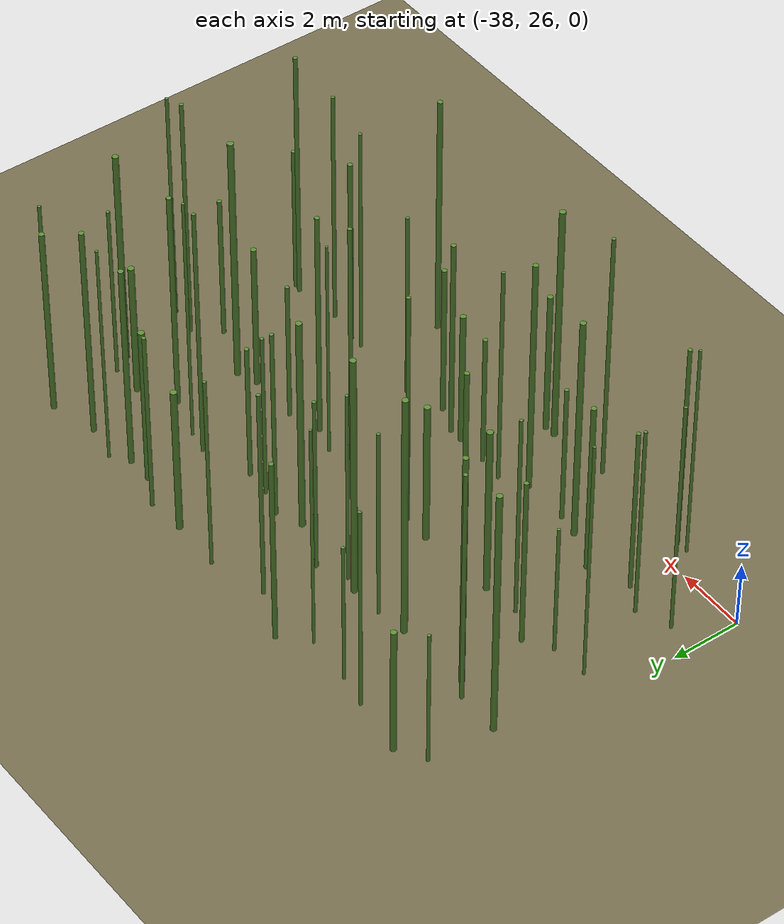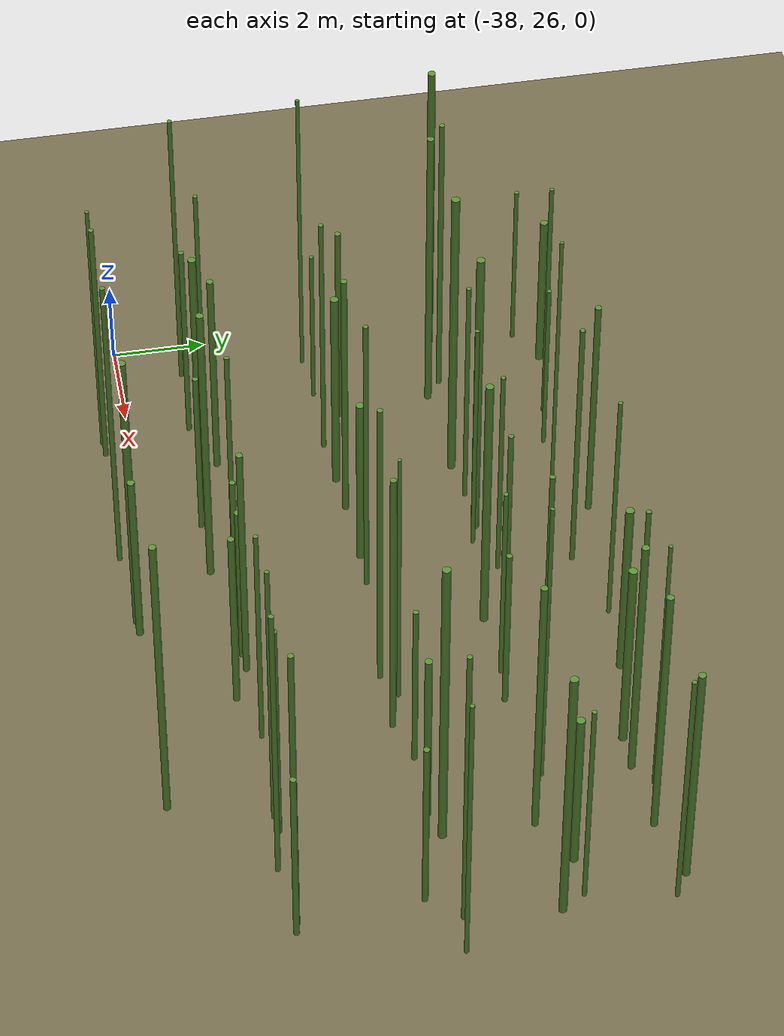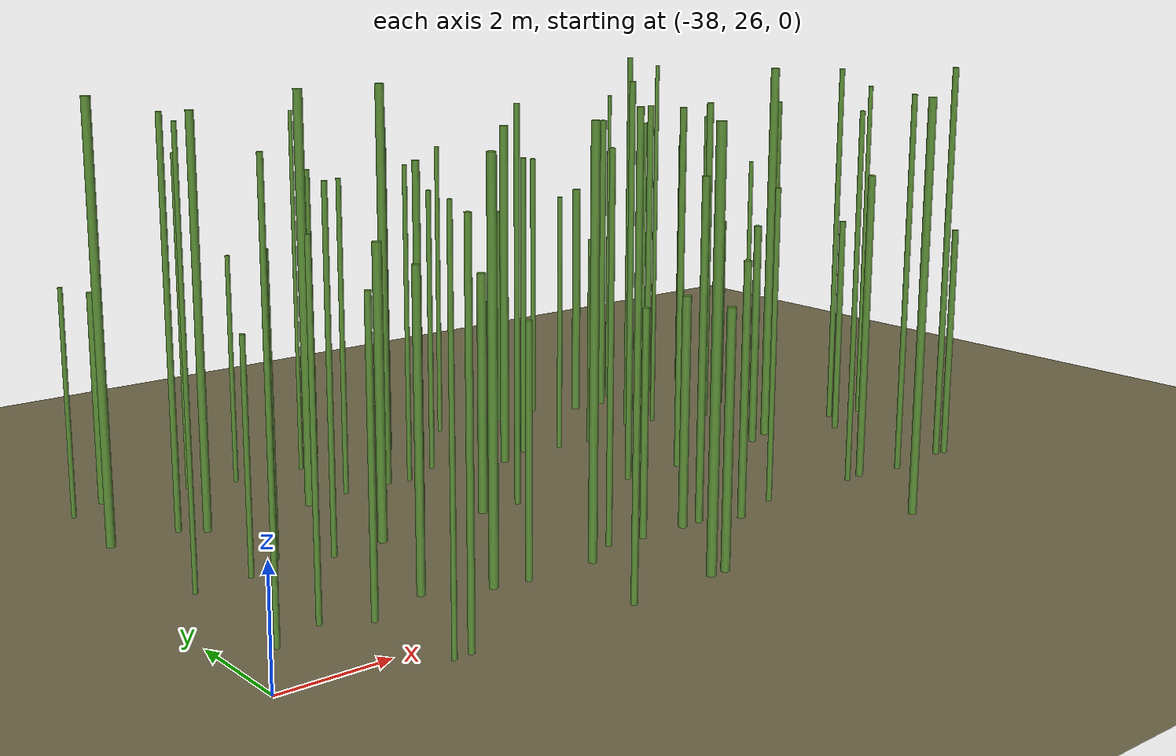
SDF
<sdf version="1.9">
 <world name="bamboo_field">
  <model name="ground_plane">
   <static>true</static>
   <link name="link">
    <collision name="collision">
     <geometry><plane><normal>0 0 1</normal><size>80.0 80.0</size></plane></geometry>
    </collision>
    <visual name="visual">
     <geometry><plane><normal>0 0 1</normal><size>80.0 80.0</size></plane></geometry>
     <material><diffuse>0.45 0.42 0.30 1</diffuse></material>
    </visual>
   </link>
  </model>
  <model name="bamboo_1682">
   <static>true</static>
   <pose>-35.31208620726054 25.401371986470004 3.402576567301347 0 0 0</pose>
   <link name="link">
    <collision name="collision">
     <geometry>
      <cylinder><radius>0.04169248928218038</radius><length>6.805153134602694</length></cylinder>
     </geometry>
    </collision>
    <visual name="visual">
     <geometry>
      <cylinder><radius>0.04169248928218038</radius><length>6.805153134602694</length></cylinder>
     </geometry>
     <material><diffuse>0.35 0.55 0.20 1</diffuse><specular>0.1 0.1 0.1 1</specular></material>
    </visual>
   </link>
  </model>
  <model name="bamboo_1683">
   <static>true</static>
   <pose>-34.979411960656854 25.432045791497355 3.2957626268711664 0 0 0</pose>
   <link name="link">
    <collision name="collision">
     <geometry>
      <cylinder><radius>0.05673562390233272</radius><length>6.591525253742333</length></cylinder>
     </geometry>
    </collision>
    <visual name="visual">
     <geometry>
      <cylinder><radius>0.05673562390233272</radius><length>6.591525253742333</length></cylinder>
     </geometry>
     <material><diffuse>0.35 0.55 0.20 1</diffuse><specular>0.1 0.1 0.1 1</specular></material>
    </visual>
   </link>
  </model>
  <model name="bamboo_1686">
   <static>true</static>
   <pose>-31.84730680634404 25.327062709111434 3.941531344190084 0 0 0</pose>
   <link name="link">
    <collision name="collision">
     <geometry>
      <cylinder><radius>0.055008664891171816</radius><length>7.883062688380168</length></cylinder>
     </geometry>
    </collision>
    <visual name="visual">
     <geometry>
      <cylinder><radius>0.055008664891171816</radius><length>7.883062688380168</length></cylinder>
     </geometry>
     <material><diffuse>0.35 0.55 0.20 1</diffuse><specular>0.1 0.1 0.1 1</specular></material>
    </visual>
   </link>
  </model>
  <model name="bamboo_1688">
   <static>true</static>
   <pose>-30.014076499683696 25.452834047697436 3.7731904923446646 0 0 0</pose>
   <link name="link">
    <collision name="collision">
     <geometry>
      <cylinder><radius>0.08611767988673699</radius><length>7.546380984689329</length></cylinder>
     </geometry>
    </collision>
    <visual name="visual">
     <geometry>
      <cylinder><radius>0.08611767988673699</radius><length>7.546380984689329</length></cylinder>
     </geometry>
     <material><diffuse>0.35 0.55 0.20 1</diffuse><specular>0.1 0.1 0.1 1</specular></material>
    </visual>
   </link>
  </model>
  <model name="bamboo_1689">
   <static>true</static>
   <pose>-29.677153590034575 25.464780924572004 2.2597816536338096 0 0 0</pose>
   <link name="link">
    <collision name="collision">
     <geometry>
      <cylinder><radius>0.07759250459803238</radius><length>4.519563307267619</length></cylinder>
     </geometry>
    </collision>
    <visual name="visual">
     <geometry>
      <cylinder><radius>0.07759250459803238</radius><length>4.519563307267619</length></cylinder>
     </geometry>
     <material><diffuse>0.35 0.55 0.20 1</diffuse><specular>0.1 0.1 0.1 1</specular></material>
    </visual>
   </link>
  </model>
  <model name="bamboo_1693">
   <static>true</static>
   <pose>-24.914588256925803 25.37478450984189 3.8256660919235044 0 0 0</pose>
   <link name="link">
    <collision name="collision">
     <geometry>
      <cylinder><radius>0.07493898742366278</radius><length>7.651332183847009</length></cylinder>
     </geometry>
    </collision>
    <visual name="visual">
     <geometry>
      <cylinder><radius>0.07493898742366278</radius><length>7.651332183847009</length></cylinder>
     </geometry>
     <material><diffuse>0.35 0.55 0.20 1</diffuse><specular>0.1 0.1 0.1 1</specular></material>
    </visual>
   </link>
  </model>
  <model name="bamboo_1752">
   <static>true</static>
   <pose>-37.12999263579893 27.388148961588495 3.7052209451957836 0 0 0</pose>
   <link name="link">
    <collision name="collision">
     <geometry>
      <cylinder><radius>0.0477938428473232</radius><length>7.410441890391567</length></cylinder>
     </geometry>
    </collision>
    <visual name="visual">
     <geometry>
      <cylinder><radius>0.0477938428473232</radius><length>7.410441890391567</length></cylinder>
     </geometry>
     <material><diffuse>0.35 0.55 0.20 1</diffuse><specular>0.1 0.1 0.1 1</specular></material>
    </visual>
   </link>
  </model>
  <model name="bamboo_1753">
   <static>true</static>
   <pose>-36.18106537528909 27.754088677848074 3.050473741919584 0 0 0</pose>
   <link name="link">
    <collision name="collision">
     <geometry>
      <cylinder><radius>0.048456043850921934</radius><length>6.100947483839168</length></cylinder>
     </geometry>
    </collision>
    <visual name="visual">
     <geometry>
      <cylinder><radius>0.048456043850921934</radius><length>6.100947483839168</length></cylinder>
     </geometry>
     <material><diffuse>0.35 0.55 0.20 1</diffuse><specular>0.1 0.1 0.1 1</specular></material>
    </visual>
   </link>
  </model>
  <model name="bamboo_1754">
   <static>true</static>
   <pose>-35.44112649378931 27.320916037346652 2.618616569138009 0 0 0</pose>
   <link name="link">
    <collision name="collision">
     <geometry>
      <cylinder><radius>0.05711834975511773</radius><length>5.237233138276018</length></cylinder>
     </geometry>
    </collision>
    <visual name="visual">
     <geometry>
      <cylinder><radius>0.05711834975511773</radius><length>5.237233138276018</length></cylinder>
     </geometry>
     <material><diffuse>0.35 0.55 0.20 1</diffuse><specular>0.1 0.1 0.1 1</specular></material>
    </visual>
   </link>
  </model>
  <model name="bamboo_1755">
   <static>true</static>
   <pose>-34.26541254425033 27.764986907187307 2.7130029275833105 0 0 0</pose>
   <link name="link">
    <collision name="collision">
     <geometry>
      <cylinder><radius>0.0724998331058555</radius><length>5.426005855166621</length></cylinder>
     </geometry>
    </collision>
    <visual name="visual">
     <geometry>
      <cylinder><radius>0.0724998331058555</radius><length>5.426005855166621</length></cylinder>
     </geometry>
     <material><diffuse>0.35 0.55 0.20 1</diffuse><specular>0.1 0.1 0.1 1</specular></material>
    </visual>
   </link>
  </model>
  <model name="bamboo_1756">
   <static>true</static>
   <pose>-33.15753409815572 27.285955077442125 3.566174876506409 0 0 0</pose>
   <link name="link">
    <collision name="collision">
     <geometry>
      <cylinder><radius>0.08228729673433917</radius><length>7.132349753012818</length></cylinder>
     </geometry>
    </collision>
    <visual name="visual">
     <geometry>
      <cylinder><radius>0.08228729673433917</radius><length>7.132349753012818</length></cylinder>
     </geometry>
     <material><diffuse>0.35 0.55 0.20 1</diffuse><specular>0.1 0.1 0.1 1</specular></material>
    </visual>
   </link>
  </model>
  <model name="bamboo_1757">
   <static>true</static>
   <pose>-32.51274438101849 27.17313356232206 2.1976800404791277 0 0 0</pose>
   <link name="link">
    <collision name="collision">
     <geometry>
      <cylinder><radius>0.059924561167658125</radius><length>4.395360080958255</length></cylinder>
     </geometry>
    </collision>
    <visual name="visual">
     <geometry>
      <cylinder><radius>0.059924561167658125</radius><length>4.395360080958255</length></cylinder>
     </geometry>
     <material><diffuse>0.35 0.55 0.20 1</diffuse><specular>0.1 0.1 0.1 1</specular></material>
    </visual>
   </link>
  </model>
  <model name="bamboo_1758">
   <static>true</static>
   <pose>-31.14278509152722 27.16527751310188 3.745231227270473 0 0 0</pose>
   <link name="link">
    <collision name="collision">
     <geometry>
      <cylinder><radius>0.07706289438073675</radius><length>7.490462454540946</length></cylinder>
     </geometry>
    </collision>
    <visual name="visual">
     <geometry>
      <cylinder><radius>0.07706289438073675</radius><length>7.490462454540946</length></cylinder>
     </geometry>
     <material><diffuse>0.35 0.55 0.20 1</diffuse><specular>0.1 0.1 0.1 1</specular></material>
    </visual>
   </link>
  </model>
  <model name="bamboo_1759">
   <static>true</static>
   <pose>-30.412620953999348 27.581660204273817 3.47887155685849 0 0 0</pose>
   <link name="link">
    <collision name="collision">
     <geometry>
      <cylinder><radius>0.05280360363322118</radius><length>6.95774311371698</length></cylinder>
     </geometry>
    </collision>
    <visual name="visual">
     <geometry>
      <cylinder><radius>0.05280360363322118</radius><length>6.95774311371698</length></cylinder>
     </geometry>
     <material><diffuse>0.35 0.55 0.20 1</diffuse><specular>0.1 0.1 0.1 1</specular></material>
    </visual>
   </link>
  </model>
  <model name="bamboo_1760">
   <static>true</static>
   <pose>-29.67097906432337 27.512478111532445 2.080465584686063 0 0 0</pose>
   <link name="link">
    <collision name="collision">
     <geometry>
      <cylinder><radius>0.06280330254786859</radius><length>4.160931169372126</length></cylinder>
     </geometry>
    </collision>
    <visual name="visual">
     <geometry>
      <cylinder><radius>0.06280330254786859</radius><length>4.160931169372126</length></cylinder>
     </geometry>
     <material><diffuse>0.35 0.55 0.20 1</diffuse><specular>0.1 0.1 0.1 1</specular></material>
    </visual>
   </link>
  </model>
  <model name="bamboo_1761">
   <static>true</static>
   <pose>-28.728638270833002 27.491885543594616 2.1273378715834164 0 0 0</pose>
   <link name="link">
    <collision name="collision">
     <geometry>
      <cylinder><radius>0.08153461900259064</radius><length>4.254675743166833</length></cylinder>
     </geometry>
    </collision>
    <visual name="visual">
     <geometry>
      <cylinder><radius>0.08153461900259064</radius><length>4.254675743166833</length></cylinder>
     </geometry>
     <material><diffuse>0.35 0.55 0.20 1</diffuse><specular>0.1 0.1 0.1 1</specular></material>
    </visual>
   </link>
  </model>
  <model name="bamboo_1762">
   <static>true</static>
   <pose>-28.31149583150414 27.501948704589385 3.1625408750367505 0 0 0</pose>
   <link name="link">
    <collision name="collision">
     <geometry>
      <cylinder><radius>0.0692838695502581</radius><length>6.325081750073501</length></cylinder>
     </geometry>
    </collision>
    <visual name="visual">
     <geometry>
      <cylinder><radius>0.0692838695502581</radius><length>6.325081750073501</length></cylinder>
     </geometry>
     <material><diffuse>0.35 0.55 0.20 1</diffuse><specular>0.1 0.1 0.1 1</specular></material>
    </visual>
   </link>
  </model>
  <model name="bamboo_1763">
   <static>true</static>
   <pose>-27.54243622738856 27.18446549936091 2.392851657842085 0 0 0</pose>
   <link name="link">
    <collision name="collision">
     <geometry>
      <cylinder><radius>0.07169528509417718</radius><length>4.78570331568417</length></cylinder>
     </geometry>
    </collision>
    <visual name="visual">
     <geometry>
      <cylinder><radius>0.07169528509417718</radius><length>4.78570331568417</length></cylinder>
     </geometry>
     <material><diffuse>0.35 0.55 0.20 1</diffuse><specular>0.1 0.1 0.1 1</specular></material>
    </visual>
   </link>
  </model>
  <model name="bamboo_1764">
   <static>true</static>
   <pose>-26.44643171643943 27.533294635163326 2.974461336433306 0 0 0</pose>
   <link name="link">
    <collision name="collision">
     <geometry>
      <cylinder><radius>0.05074969716306543</radius><length>5.948922672866612</length></cylinder>
     </geometry>
    </collision>
    <visual name="visual">
     <geometry>
      <cylinder><radius>0.05074969716306543</radius><length>5.948922672866612</length></cylinder>
     </geometry>
     <material><diffuse>0.35 0.55 0.20 1</diffuse><specular>0.1 0.1 0.1 1</specular></material>
    </visual>
   </link>
  </model>
  <model name="bamboo_1765">
   <static>true</static>
   <pose>-24.315810273039563 27.445473259538026 3.611531729026624 0 0 0</pose>
   <link name="link">
    <collision name="collision">
     <geometry>
      <cylinder><radius>0.04973993822520134</radius><length>7.223063458053248</length></cylinder>
     </geometry>
    </collision>
    <visual name="visual">
     <geometry>
      <cylinder><radius>0.04973993822520134</radius><length>7.223063458053248</length></cylinder>
     </geometry>
     <material><diffuse>0.35 0.55 0.20 1</diffuse><specular>0.1 0.1 0.1 1</specular></material>
    </visual>
   </link>
  </model>
  <model name="bamboo_1766">
   <static>true</static>
   <pose>-23.922129208032512 27.481200240728835 2.985210279094103 0 0 0</pose>
   <link name="link">
    <collision name="collision">
     <geometry>
      <cylinder><radius>0.07006770732654005</radius><length>5.970420558188206</length></cylinder>
     </geometry>
    </collision>
    <visual name="visual">
     <geometry>
      <cylinder><radius>0.07006770732654005</radius><length>5.970420558188206</length></cylinder>
     </geometry>
     <material><diffuse>0.35 0.55 0.20 1</diffuse><specular>0.1 0.1 0.1 1</specular></material>
    </visual>
   </link>
  </model>
  <model name="bamboo_1767">
   <static>true</static>
   <pose>-22.965706025826254 27.318796997218367 3.7345219333796207 0 0 0</pose>
   <link name="link">
    <collision name="collision">
     <geometry>
      <cylinder><radius>0.054981863373592454</radius><length>7.469043866759241</length></cylinder>
     </geometry>
    </collision>
    <visual name="visual">
     <geometry>
      <cylinder><radius>0.054981863373592454</radius><length>7.469043866759241</length></cylinder>
     </geometry>
     <material><diffuse>0.35 0.55 0.20 1</diffuse><specular>0.1 0.1 0.1 1</specular></material>
    </visual>
   </link>
  </model>
  <model name="bamboo_1768">
   <static>true</static>
   <pose>-21.55352778741984 27.467401461973367 3.954457994648996 0 0 0</pose>
   <link name="link">
    <collision name="collision">
     <geometry><cylinder><radius>0.062002190020483</radius><length>7.908915989297992</length></cylinder></geometry>
    </collision>
    <visual name="visual">
     <geometry><cylinder><radius>0.062002190020483</radius><length>7.908915989297992</length></cylinder></geometry>
     <material><diffuse>0.35 0.55 0.20 1</diffuse><specular>0.1 0.1 0.1 1</specular></material>
    </visual>
   </link>
  </model>
  <model name="bamboo_1769">
   <static>true</static>
   <pose>-21.341941048579145 27.4285055954491 2.3262617465674156 0 0 0</pose>
   <link name="link">
    <collision name="collision">
     <geometry>
      <cylinder><radius>0.06352531645290103</radius><length>4.652523493134831</length></cylinder>
     </geometry>
    </collision>
    <visual name="visual">
     <geometry>
      <cylinder><radius>0.06352531645290103</radius><length>4.652523493134831</length></cylinder>
     </geometry>
     <material><diffuse>0.35 0.55 0.20 1</diffuse><specular>0.1 0.1 0.1 1</specular></material>
    </visual>
   </link>
  </model>
  <model name="bamboo_1822">
   <static>true</static>
   <pose>-37.08047899050775 30.08359589904291 3.8120290607179905 0 0 0</pose>
   <link name="link">
    <collision name="collision">
     <geometry>
      <cylinder><radius>0.041711265648877595</radius><length>7.624058121435981</length></cylinder>
     </geometry>
    </collision>
    <visual name="visual">
     <geometry>
      <cylinder><radius>0.041711265648877595</radius><length>7.624058121435981</length></cylinder>
     </geometry>
     <material><diffuse>0.35 0.55 0.20 1</diffuse><specular>0.1 0.1 0.1 1</specular></material>
    </visual>
   </link>
  </model>
  <model name="bamboo_1823">
   <static>true</static>
   <pose>-36.01450098709544 30.16330264032971 2.068228078415678 0 0 0</pose>
   <link name="link">
    <collision name="collision">
     <geometry>
      <cylinder><radius>0.0471477233002449</radius><length>4.136456156831356</length></cylinder>
     </geometry>
    </collision>
    <visual name="visual">
     <geometry>
      <cylinder><radius>0.0471477233002449</radius><length>4.136456156831356</length></cylinder>
     </geometry>
     <material><diffuse>0.35 0.55 0.20 1</diffuse><specular>0.1 0.1 0.1 1</specular></material>
    </visual>
   </link>
  </model>
  <model name="bamboo_1824">
   <static>true</static>
   <pose>-35.30172954272356 30.621875638986126 2.6878035394511857 0 0 0</pose>
   <link name="link">
    <collision name="collision">
     <geometry>
      <cylinder><radius>0.06419224301639215</radius><length>5.375607078902371</length></cylinder>
     </geometry>
    </collision>
    <visual name="visual">
     <geometry>
      <cylinder><radius>0.06419224301639215</radius><length>5.375607078902371</length></cylinder>
     </geometry>
     <material><diffuse>0.35 0.55 0.20 1</diffuse><specular>0.1 0.1 0.1 1</specular></material>
    </visual>
   </link>
  </model>
  <model name="bamboo_1825">
   <static>true</static>
   <pose>-34.42883239636821 30.13245638687307 3.242625121218035 0 0 0</pose>
   <link name="link">
    <collision name="collision">
     <geometry>
      <cylinder><radius>0.05074180955186247</radius><length>6.48525024243607</length></cylinder>
     </geometry>
    </collision>
    <visual name="visual">
     <geometry>
      <cylinder><radius>0.05074180955186247</radius><length>6.48525024243607</length></cylinder>
     </geometry>
     <material><diffuse>0.35 0.55 0.20 1</diffuse><specular>0.1 0.1 0.1 1</specular></material>
    </visual>
   </link>
  </model>
  <model name="bamboo_1826">
   <static>true</static>
   <pose>-33.37445712647313 30.228682093489233 2.6745091825229776 0 0 0</pose>
   <link name="link">
    <collision name="collision">
     <geometry>
      <cylinder><radius>0.08619428155472514</radius><length>5.349018365045955</length></cylinder>
     </geometry>
    </collision>
    <visual name="visual">
     <geometry>
      <cylinder><radius>0.08619428155472514</radius><length>5.349018365045955</length></cylinder>
     </geometry>
     <material><diffuse>0.35 0.55 0.20 1</diffuse><specular>0.1 0.1 0.1 1</specular></material>
    </visual>
   </link>
  </model>
  <model name="bamboo_1827">
   <static>true</static>
   <pose>-32.508821638158835 30.28964551328129 3.326496140606752 0 0 0</pose>
   <link name="link">
    <collision name="collision">
     <geometry>
      <cylinder><radius>0.06744503932309001</radius><length>6.652992281213504</length></cylinder>
     </geometry>
    </collision>
    <visual name="visual">
     <geometry>
      <cylinder><radius>0.06744503932309001</radius><length>6.652992281213504</length></cylinder>
     </geometry>
     <material><diffuse>0.35 0.55 0.20 1</diffuse><specular>0.1 0.1 0.1 1</specular></material>
    </visual>
   </link>
  </model>
  <model name="bamboo_1828">
   <static>true</static>
   <pose>-31.06364491188492 30.370186403876357 2.2524563386229204 0 0 0</pose>
   <link name="link">
    <collision name="collision">
     <geometry>
      <cylinder><radius>0.08823767749343767</radius><length>4.504912677245841</length></cylinder>
     </geometry>
    </collision>
    <visual name="visual">
     <geometry>
      <cylinder><radius>0.08823767749343767</radius><length>4.504912677245841</length></cylinder>
     </geometry>
     <material><diffuse>0.35 0.55 0.20 1</diffuse><specular>0.1 0.1 0.1 1</specular></material>
    </visual>
   </link>
  </model>
  <model name="bamboo_1829">
   <static>true</static>
   <pose>-30.26325638062961 30.355297872208276 3.746613477880124 0 0 0</pose>
   <link name="link">
    <collision name="collision">
     <geometry>
      <cylinder><radius>0.054785671653710025</radius><length>7.493226955760248</length></cylinder>
     </geometry>
    </collision>
    <visual name="visual">
     <geometry>
      <cylinder><radius>0.054785671653710025</radius><length>7.493226955760248</length></cylinder>
     </geometry>
     <material><diffuse>0.35 0.55 0.20 1</diffuse><specular>0.1 0.1 0.1 1</specular></material>
    </visual>
   </link>
  </model>
  <model name="bamboo_1830">
   <static>true</static>
   <pose>-27.638684632512035 30.186397585145503 3.882499439800147 0 0 0</pose>
   <link name="link">
    <collision name="collision">
     <geometry>
      <cylinder><radius>0.05987790495903291</radius><length>7.764998879600294</length></cylinder>
     </geometry>
    </collision>
    <visual name="visual">
     <geometry>
      <cylinder><radius>0.05987790495903291</radius><length>7.764998879600294</length></cylinder>
     </geometry>
     <material><diffuse>0.35 0.55 0.20 1</diffuse><specular>0.1 0.1 0.1 1</specular></material>
    </visual>
   </link>
  </model>
  <model name="bamboo_1831">
   <static>true</static>
   <pose>-27.053905313475294 30.470638406497812 3.466824646958646 0 0 0</pose>
   <link name="link">
    <collision name="collision">
     <geometry>
      <cylinder><radius>0.040835961922510385</radius><length>6.933649293917292</length></cylinder>
     </geometry>
    </collision>
    <visual name="visual">
     <geometry>
      <cylinder><radius>0.040835961922510385</radius><length>6.933649293917292</length></cylinder>
     </geometry>
     <material><diffuse>0.35 0.55 0.20 1</diffuse><specular>0.1 0.1 0.1 1</specular></material>
    </visual>
   </link>
  </model>
  <model name="bamboo_1832">
   <static>true</static>
   <pose>-26.28709307958864 30.21127947844048 3.600519978004042 0 0 0</pose>
   <link name="link">
    <collision name="collision">
     <geometry>
      <cylinder><radius>0.06625226119421243</radius><length>7.201039956008084</length></cylinder>
     </geometry>
    </collision>
    <visual name="visual">
     <geometry>
      <cylinder><radius>0.06625226119421243</radius><length>7.201039956008084</length></cylinder>
     </geometry>
     <material><diffuse>0.35 0.55 0.20 1</diffuse><specular>0.1 0.1 0.1 1</specular></material>
    </visual>
   </link>
  </model>
  <model name="bamboo_1833">
   <static>true</static>
   <pose>-25.346142123648715 30.494001831747433 2.2002761465370195 0 0 0</pose>
   <link name="link">
    <collision name="collision">
     <geometry>
      <cylinder><radius>0.058723606004845275</radius><length>4.400552293074039</length></cylinder>
     </geometry>
    </collision>
    <visual name="visual">
     <geometry>
      <cylinder><radius>0.058723606004845275</radius><length>4.400552293074039</length></cylinder>
     </geometry>
     <material><diffuse>0.35 0.55 0.20 1</diffuse><specular>0.1 0.1 0.1 1</specular></material>
    </visual>
   </link>
  </model>
  <model name="bamboo_1834">
   <static>true</static>
   <pose>-23.855278888244676 30.476748884324216 2.3041021606448524 0 0 0</pose>
   <link name="link">
    <collision name="collision">
     <geometry>
      <cylinder><radius>0.07755520906898601</radius><length>4.608204321289705</length></cylinder>
     </geometry>
    </collision>
    <visual name="visual">
     <geometry>
      <cylinder><radius>0.07755520906898601</radius><length>4.608204321289705</length></cylinder>
     </geometry>
     <material><diffuse>0.35 0.55 0.20 1</diffuse><specular>0.1 0.1 0.1 1</specular></material>
    </visual>
   </link>
  </model>
  <model name="bamboo_1835">
   <static>true</static>
   <pose>-23.263947699229707 30.680652630693796 3.897798216355932 0 0 0</pose>
   <link name="link">
    <collision name="collision">
     <geometry>
      <cylinder><radius>0.0879528382305601</radius><length>7.795596432711864</length></cylinder>
     </geometry>
    </collision>
    <visual name="visual">
     <geometry>
      <cylinder><radius>0.0879528382305601</radius><length>7.795596432711864</length></cylinder>
     </geometry>
     <material><diffuse>0.35 0.55 0.20 1</diffuse><specular>0.1 0.1 0.1 1</specular></material>
    </visual>
   </link>
  </model>
  <model name="bamboo_1836">
   <static>true</static>
   <pose>-21.725991324303884 30.050230525703203 2.272239755415136 0 0 0</pose>
   <link name="link">
    <collision name="collision">
     <geometry>
      <cylinder><radius>0.0634002073563342</radius><length>4.544479510830272</length></cylinder>
     </geometry>
    </collision>
    <visual name="visual">
     <geometry>
      <cylinder><radius>0.0634002073563342</radius><length>4.544479510830272</length></cylinder>
     </geometry>
     <material><diffuse>0.35 0.55 0.20 1</diffuse><specular>0.1 0.1 0.1 1</specular></material>
    </visual>
   </link>
  </model>
  <model name="bamboo_1837">
   <static>true</static>
   <pose>-21.15297787194437 30.721476023871382 3.8461043049910737 0 0 0</pose>
   <link name="link">
    <collision name="collision">
     <geometry>
      <cylinder><radius>0.05558026753692135</radius><length>7.692208609982147</length></cylinder>
     </geometry>
    </collision>
    <visual name="visual">
     <geometry>
      <cylinder><radius>0.05558026753692135</radius><length>7.692208609982147</length></cylinder>
     </geometry>
     <material><diffuse>0.35 0.55 0.20 1</diffuse><specular>0.1 0.1 0.1 1</specular></material>
    </visual>
   </link>
  </model>
  <model name="bamboo_1838">
   <static>true</static>
   <pose>-20.323256016819947 30.614874790364794 3.644882502559616 0 0 0</pose>
   <link name="link">
    <collision name="collision">
     <geometry>
      <cylinder><radius>0.04718957836960708</radius><length>7.289765005119232</length></cylinder>
     </geometry>
    </collision>
    <visual name="visual">
     <geometry>
      <cylinder><radius>0.04718957836960708</radius><length>7.289765005119232</length></cylinder>
     </geometry>
     <material><diffuse>0.35 0.55 0.20 1</diffuse><specular>0.1 0.1 0.1 1</specular></material>
    </visual>
   </link>
  </model>
  <model name="bamboo_1889">
   <static>true</static>
   <pose>-37.21806253309893 32.96180699898168 3.9114234026132966 0 0 0</pose>
   <link name="link">
    <collision name="collision">
     <geometry>
      <cylinder><radius>0.08296793120704189</radius><length>7.822846805226593</length></cylinder>
     </geometry>
    </collision>
    <visual name="visual">
     <geometry>
      <cylinder><radius>0.08296793120704189</radius><length>7.822846805226593</length></cylinder>
     </geometry>
     <material><diffuse>0.35 0.55 0.20 1</diffuse><specular>0.1 0.1 0.1 1</specular></material>
    </visual>
   </link>
  </model>
  <model name="bamboo_1890">
   <static>true</static>
   <pose>-35.93845507709417 32.9469991348013 3.744194189953522 0 0 0</pose>
   <link name="link">
    <collision name="collision">
     <geometry>
      <cylinder><radius>0.057262398115160235</radius><length>7.488388379907044</length></cylinder>
     </geometry>
    </collision>
    <visual name="visual">
     <geometry>
      <cylinder><radius>0.057262398115160235</radius><length>7.488388379907044</length></cylinder>
     </geometry>
     <material><diffuse>0.35 0.55 0.20 1</diffuse><specular>0.1 0.1 0.1 1</specular></material>
    </visual>
   </link>
  </model>
  <model name="bamboo_1891">
   <static>true</static>
   <pose>-35.52344690531502 32.63139114900776 3.759343888938183 0 0 0</pose>
   <link name="link">
    <collision name="collision">
     <geometry>
      <cylinder><radius>0.07531837830169985</radius><length>7.518687777876366</length></cylinder>
     </geometry>
    </collision>
    <visual name="visual">
     <geometry>
      <cylinder><radius>0.07531837830169985</radius><length>7.518687777876366</length></cylinder>
     </geometry>
     <material><diffuse>0.35 0.55 0.20 1</diffuse><specular>0.1 0.1 0.1 1</specular></material>
    </visual>
   </link>
  </model>
  <model name="bamboo_1892">
   <static>true</static>
   <pose>-33.33954003683485 32.74536206486524 3.8814080226463537 0 0 0</pose>
   <link name="link">
    <collision name="collision">
     <geometry>
      <cylinder><radius>0.08790156848492006</radius><length>7.762816045292707</length></cylinder>
     </geometry>
    </collision>
    <visual name="visual">
     <geometry>
      <cylinder><radius>0.08790156848492006</radius><length>7.762816045292707</length></cylinder>
     </geometry>
     <material><diffuse>0.35 0.55 0.20 1</diffuse><specular>0.1 0.1 0.1 1</specular></material>
    </visual>
   </link>
  </model>
  <model name="bamboo_1893">
   <static>true</static>
   <pose>-32.45784962214581 32.87555205571868 3.036977695932765 0 0 0</pose>
   <link name="link">
    <collision name="collision">
     <geometry>
      <cylinder><radius>0.04902083798874405</radius><length>6.07395539186553</length></cylinder>
     </geometry>
    </collision>
    <visual name="visual">
     <geometry>
      <cylinder><radius>0.04902083798874405</radius><length>6.07395539186553</length></cylinder>
     </geometry>
     <material><diffuse>0.35 0.55 0.20 1</diffuse><specular>0.1 0.1 0.1 1</specular></material>
    </visual>
   </link>
  </model>
  <model name="bamboo_1894">
   <static>true</static>
   <pose>-31.496585166430705 32.910782624865455 3.875636524776624 0 0 0</pose>
   <link name="link">
    <collision name="collision">
     <geometry>
      <cylinder><radius>0.08599995700172956</radius><length>7.751273049553248</length></cylinder>
     </geometry>
    </collision>
    <visual name="visual">
     <geometry>
      <cylinder><radius>0.08599995700172956</radius><length>7.751273049553248</length></cylinder>
     </geometry>
     <material><diffuse>0.35 0.55 0.20 1</diffuse><specular>0.1 0.1 0.1 1</specular></material>
    </visual>
   </link>
  </model>
  <model name="bamboo_1895">
   <static>true</static>
   <pose>-31.054230598150134 32.783181778550485 3.108923689506405 0 0 0</pose>
   <link name="link">
    <collision name="collision">
     <geometry><cylinder><radius>0.0458190813916568</radius><length>6.21784737901281</length></cylinder></geometry>
    </collision>
    <visual name="visual">
     <geometry><cylinder><radius>0.0458190813916568</radius><length>6.21784737901281</length></cylinder></geometry>
     <material><diffuse>0.35 0.55 0.20 1</diffuse><specular>0.1 0.1 0.1 1</specular></material>
    </visual>
   </link>
  </model>
  <model name="bamboo_1896">
   <static>true</static>
   <pose>-30.24446583106336 33.16882367221058 2.808569387221193 0 0 0</pose>
   <link name="link">
    <collision name="collision">
     <geometry>
      <cylinder><radius>0.049417009276916814</radius><length>5.617138774442386</length></cylinder>
     </geometry>
    </collision>
    <visual name="visual">
     <geometry>
      <cylinder><radius>0.049417009276916814</radius><length>5.617138774442386</length></cylinder>
     </geometry>
     <material><diffuse>0.35 0.55 0.20 1</diffuse><specular>0.1 0.1 0.1 1</specular></material>
    </visual>
   </link>
  </model>
  <model name="bamboo_1897">
   <static>true</static>
   <pose>-28.839497413888797 32.596342580188214 3.4152748697193194 0 0 0</pose>
   <link name="link">
    <collision name="collision">
     <geometry>
      <cylinder><radius>0.08548340315359086</radius><length>6.830549739438639</length></cylinder>
     </geometry>
    </collision>
    <visual name="visual">
     <geometry>
      <cylinder><radius>0.08548340315359086</radius><length>6.830549739438639</length></cylinder>
     </geometry>
     <material><diffuse>0.35 0.55 0.20 1</diffuse><specular>0.1 0.1 0.1 1</specular></material>
    </visual>
   </link>
  </model>
  <model name="bamboo_1898">
   <static>true</static>
   <pose>-28.116342680453492 32.89954429860599 3.0546749765127403 0 0 0</pose>
   <link name="link">
    <collision name="collision">
     <geometry>
      <cylinder><radius>0.05602765318448358</radius><length>6.109349953025481</length></cylinder>
     </geometry>
    </collision>
    <visual name="visual">
     <geometry>
      <cylinder><radius>0.05602765318448358</radius><length>6.109349953025481</length></cylinder>
     </geometry>
     <material><diffuse>0.35 0.55 0.20 1</diffuse><specular>0.1 0.1 0.1 1</specular></material>
    </visual>
   </link>
  </model>
  <model name="bamboo_1899">
   <static>true</static>
   <pose>-27.347696270005454 32.665825382129476 2.6406328400295327 0 0 0</pose>
   <link name="link">
    <collision name="collision">
     <geometry>
      <cylinder><radius>0.05004660438096581</radius><length>5.281265680059065</length></cylinder>
     </geometry>
    </collision>
    <visual name="visual">
     <geometry>
      <cylinder><radius>0.05004660438096581</radius><length>5.281265680059065</length></cylinder>
     </geometry>
     <material><diffuse>0.35 0.55 0.20 1</diffuse><specular>0.1 0.1 0.1 1</specular></material>
    </visual>
   </link>
  </model>
  <model name="bamboo_1900">
   <static>true</static>
   <pose>-26.566846651839235 32.600219272480444 2.164777777946969 0 0 0</pose>
   <link name="link">
    <collision name="collision">
     <geometry>
      <cylinder><radius>0.06175694122056176</radius><length>4.329555555893938</length></cylinder>
     </geometry>
    </collision>
    <visual name="visual">
     <geometry>
      <cylinder><radius>0.06175694122056176</radius><length>4.329555555893938</length></cylinder>
     </geometry>
     <material><diffuse>0.35 0.55 0.20 1</diffuse><specular>0.1 0.1 0.1 1</specular></material>
    </visual>
   </link>
  </model>
  <model name="bamboo_1901">
   <static>true</static>
   <pose>-25.119510819639707 33.06678623637494 3.9845747170799966 0 0 0</pose>
   <link name="link">
    <collision name="collision">
     <geometry>
      <cylinder><radius>0.05529487911522932</radius><length>7.969149434159993</length></cylinder>
     </geometry>
    </collision>
    <visual name="visual">
     <geometry>
      <cylinder><radius>0.05529487911522932</radius><length>7.969149434159993</length></cylinder>
     </geometry>
     <material><diffuse>0.35 0.55 0.20 1</diffuse><specular>0.1 0.1 0.1 1</specular></material>
    </visual>
   </link>
  </model>
  <model name="bamboo_1902">
   <static>true</static>
   <pose>-24.46448481707263 32.93842522243093 3.8935597105203197 0 0 0</pose>
   <link name="link">
    <collision name="collision">
     <geometry>
      <cylinder><radius>0.042081627096265145</radius><length>7.787119421040639</length></cylinder>
     </geometry>
    </collision>
    <visual name="visual">
     <geometry>
      <cylinder><radius>0.042081627096265145</radius><length>7.787119421040639</length></cylinder>
     </geometry>
     <material><diffuse>0.35 0.55 0.20 1</diffuse><specular>0.1 0.1 0.1 1</specular></material>
    </visual>
   </link>
  </model>
  <model name="bamboo_1903">
   <static>true</static>
   <pose>-23.245353668290115 32.56024160538477 3.4785141057961586 0 0 0</pose>
   <link name="link">
    <collision name="collision">
     <geometry>
      <cylinder><radius>0.07204662140967459</radius><length>6.957028211592317</length></cylinder>
     </geometry>
    </collision>
    <visual name="visual">
     <geometry>
      <cylinder><radius>0.07204662140967459</radius><length>6.957028211592317</length></cylinder>
     </geometry>
     <material><diffuse>0.35 0.55 0.20 1</diffuse><specular>0.1 0.1 0.1 1</specular></material>
    </visual>
   </link>
  </model>
  <model name="bamboo_1904">
   <static>true</static>
   <pose>-22.2204038128336 33.13878996396617 2.104870510455163 0 0 0</pose>
   <link name="link">
    <collision name="collision">
     <geometry>
      <cylinder><radius>0.08820935559934515</radius><length>4.209741020910326</length></cylinder>
     </geometry>
    </collision>
    <visual name="visual">
     <geometry>
      <cylinder><radius>0.08820935559934515</radius><length>4.209741020910326</length></cylinder>
     </geometry>
     <material><diffuse>0.35 0.55 0.20 1</diffuse><specular>0.1 0.1 0.1 1</specular></material>
    </visual>
   </link>
  </model>
  <model name="bamboo_1905">
   <static>true</static>
   <pose>-21.31333557699117 33.16465979203003 2.741647849695882 0 0 0</pose>
   <link name="link">
    <collision name="collision">
     <geometry>
      <cylinder><radius>0.048914505879858725</radius><length>5.483295699391764</length></cylinder>
     </geometry>
    </collision>
    <visual name="visual">
     <geometry>
      <cylinder><radius>0.048914505879858725</radius><length>5.483295699391764</length></cylinder>
     </geometry>
     <material><diffuse>0.35 0.55 0.20 1</diffuse><specular>0.1 0.1 0.1 1</specular></material>
    </visual>
   </link>
  </model>
  <model name="bamboo_1906">
   <static>true</static>
   <pose>-21.01222902606361 32.669722084520544 3.424821158056118 0 0 0</pose>
   <link name="link">
    <collision name="collision">
     <geometry>
      <cylinder><radius>0.08461780384986368</radius><length>6.849642316112236</length></cylinder>
     </geometry>
    </collision>
    <visual name="visual">
     <geometry>
      <cylinder><radius>0.08461780384986368</radius><length>6.849642316112236</length></cylinder>
     </geometry>
     <material><diffuse>0.35 0.55 0.20 1</diffuse><specular>0.1 0.1 0.1 1</specular></material>
    </visual>
   </link>
  </model>
  <model name="bamboo_1959">
   <static>true</static>
   <pose>-37.08862819637752 34.827603802767214 2.1488292541668894 0 0 0</pose>
   <link name="link">
    <collision name="collision">
     <geometry>
      <cylinder><radius>0.045352480427533766</radius><length>4.297658508333779</length></cylinder>
     </geometry>
    </collision>
    <visual name="visual">
     <geometry>
      <cylinder><radius>0.045352480427533766</radius><length>4.297658508333779</length></cylinder>
     </geometry>
     <material><diffuse>0.35 0.55 0.20 1</diffuse><specular>0.1 0.1 0.1 1</specular></material>
    </visual>
   </link>
  </model>
  <model name="bamboo_1960">
   <static>true</static>
   <pose>-36.32000412113718 35.2846898848566 2.0192904878125653 0 0 0</pose>
   <link name="link">
    <collision name="collision">
     <geometry>
      <cylinder><radius>0.08318451995976699</radius><length>4.0385809756251305</length></cylinder>
     </geometry>
    </collision>
    <visual name="visual">
     <geometry>
      <cylinder><radius>0.08318451995976699</radius><length>4.0385809756251305</length></cylinder>
     </geometry>
     <material><diffuse>0.35 0.55 0.20 1</diffuse><specular>0.1 0.1 0.1 1</specular></material>
    </visual>
   </link>
  </model>
  <model name="bamboo_1961">
   <static>true</static>
   <pose>-34.6714087736851 35.04233361134635 3.2522527570373465 0 0 0</pose>
   <link name="link">
    <collision name="collision">
     <geometry>
      <cylinder><radius>0.04781218952788223</radius><length>6.504505514074693</length></cylinder>
     </geometry>
    </collision>
    <visual name="visual">
     <geometry>
      <cylinder><radius>0.04781218952788223</radius><length>6.504505514074693</length></cylinder>
     </geometry>
     <material><diffuse>0.35 0.55 0.20 1</diffuse><specular>0.1 0.1 0.1 1</specular></material>
    </visual>
   </link>
  </model>
  <model name="bamboo_1962">
   <static>true</static>
   <pose>-33.739089423508915 34.8594644303161 2.2439567902112962 0 0 0</pose>
   <link name="link">
    <collision name="collision">
     <geometry>
      <cylinder><radius>0.045291636888893386</radius><length>4.4879135804225925</length></cylinder>
     </geometry>
    </collision>
    <visual name="visual">
     <geometry>
      <cylinder><radius>0.045291636888893386</radius><length>4.4879135804225925</length></cylinder>
     </geometry>
     <material><diffuse>0.35 0.55 0.20 1</diffuse><specular>0.1 0.1 0.1 1</specular></material>
    </visual>
   </link>
  </model>
  <model name="bamboo_1963">
   <static>true</static>
   <pose>-32.33373255658311 34.75479855532293 3.583185459458843 0 0 0</pose>
   <link name="link">
    <collision name="collision">
     <geometry>
      <cylinder><radius>0.0401920567575728</radius><length>7.166370918917686</length></cylinder>
     </geometry>
    </collision>
    <visual name="visual">
     <geometry>
      <cylinder><radius>0.0401920567575728</radius><length>7.166370918917686</length></cylinder>
     </geometry>
     <material><diffuse>0.35 0.55 0.20 1</diffuse><specular>0.1 0.1 0.1 1</specular></material>
    </visual>
   </link>
  </model>
  <model name="bamboo_1964">
   <static>true</static>
   <pose>-31.62701096907886 35.411350218489396 2.9520882191889126 0 0 0</pose>
   <link name="link">
    <collision name="collision">
     <geometry>
      <cylinder><radius>0.0664666740568871</radius><length>5.904176438377825</length></cylinder>
     </geometry>
    </collision>
    <visual name="visual">
     <geometry>
      <cylinder><radius>0.0664666740568871</radius><length>5.904176438377825</length></cylinder>
     </geometry>
     <material><diffuse>0.35 0.55 0.20 1</diffuse><specular>0.1 0.1 0.1 1</specular></material>
    </visual>
   </link>
  </model>
  <model name="bamboo_1965">
   <static>true</static>
   <pose>-30.217431908186303 34.76268595383317 3.3523186682434685 0 0 0</pose>
   <link name="link">
    <collision name="collision">
     <geometry>
      <cylinder><radius>0.054403174717562175</radius><length>6.704637336486937</length></cylinder>
     </geometry>
    </collision>
    <visual name="visual">
     <geometry>
      <cylinder><radius>0.054403174717562175</radius><length>6.704637336486937</length></cylinder>
     </geometry>
     <material><diffuse>0.35 0.55 0.20 1</diffuse><specular>0.1 0.1 0.1 1</specular></material>
    </visual>
   </link>
  </model>
  <model name="bamboo_1966">
   <static>true</static>
   <pose>-28.59771956122553 35.20977642743325 3.0839968707477166 0 0 0</pose>
   <link name="link">
    <collision name="collision">
     <geometry>
      <cylinder><radius>0.04719463857940459</radius><length>6.167993741495433</length></cylinder>
     </geometry>
    </collision>
    <visual name="visual">
     <geometry>
      <cylinder><radius>0.04719463857940459</radius><length>6.167993741495433</length></cylinder>
     </geometry>
     <material><diffuse>0.35 0.55 0.20 1</diffuse><specular>0.1 0.1 0.1 1</specular></material>
    </visual>
   </link>
  </model>
  <model name="bamboo_1967">
   <static>true</static>
   <pose>-27.077951855898263 35.13441525547909 2.324847152749717 0 0 0</pose>
   <link name="link">
    <collision name="collision">
     <geometry>
      <cylinder><radius>0.08959902064044607</radius><length>4.649694305499434</length></cylinder>
     </geometry>
    </collision>
    <visual name="visual">
     <geometry>
      <cylinder><radius>0.08959902064044607</radius><length>4.649694305499434</length></cylinder>
     </geometry>
     <material><diffuse>0.35 0.55 0.20 1</diffuse><specular>0.1 0.1 0.1 1</specular></material>
    </visual>
   </link>
  </model>
  <model name="bamboo_1968">
   <static>true</static>
   <pose>-26.004910117917007 35.23460972130134 2.853046614690867 0 0 0</pose>
   <link name="link">
    <collision name="collision">
     <geometry>
      <cylinder><radius>0.054270150742776024</radius><length>5.706093229381734</length></cylinder>
     </geometry>
    </collision>
    <visual name="visual">
     <geometry>
      <cylinder><radius>0.054270150742776024</radius><length>5.706093229381734</length></cylinder>
     </geometry>
     <material><diffuse>0.35 0.55 0.20 1</diffuse><specular>0.1 0.1 0.1 1</specular></material>
    </visual>
   </link>
  </model>
  <model name="bamboo_1969">
   <static>true</static>
   <pose>-25.141809813653573 34.76505684952716 2.503336344382899 0 0 0</pose>
   <link name="link">
    <collision name="collision">
     <geometry>
      <cylinder><radius>0.08840695212912969</radius><length>5.006672688765798</length></cylinder>
     </geometry>
    </collision>
    <visual name="visual">
     <geometry>
      <cylinder><radius>0.08840695212912969</radius><length>5.006672688765798</length></cylinder>
     </geometry>
     <material><diffuse>0.35 0.55 0.20 1</diffuse><specular>0.1 0.1 0.1 1</specular></material>
    </visual>
   </link>
  </model>
  <model name="bamboo_1970">
   <static>true</static>
   <pose>-24.372312130860504 34.77576564150352 3.2396907769985512 0 0 0</pose>
   <link name="link">
    <collision name="collision">
     <geometry>
      <cylinder><radius>0.07664570900067835</radius><length>6.4793815539971025</length></cylinder>
     </geometry>
    </collision>
    <visual name="visual">
     <geometry>
      <cylinder><radius>0.07664570900067835</radius><length>6.4793815539971025</length></cylinder>
     </geometry>
     <material><diffuse>0.35 0.55 0.20 1</diffuse><specular>0.1 0.1 0.1 1</specular></material>
    </visual>
   </link>
  </model>
  <model name="bamboo_1971">
   <static>true</static>
   <pose>-23.877168885839488 35.13149654963024 3.488537396110611 0 0 0</pose>
   <link name="link">
    <collision name="collision">
     <geometry>
      <cylinder><radius>0.040599947190719715</radius><length>6.977074792221222</length></cylinder>
     </geometry>
    </collision>
    <visual name="visual">
     <geometry>
      <cylinder><radius>0.040599947190719715</radius><length>6.977074792221222</length></cylinder>
     </geometry>
     <material><diffuse>0.35 0.55 0.20 1</diffuse><specular>0.1 0.1 0.1 1</specular></material>
    </visual>
   </link>
  </model>
  <model name="bamboo_1972">
   <static>true</static>
   <pose>-22.82628254285689 34.903505626322655 3.3563911014690415 0 0 0</pose>
   <link name="link">
    <collision name="collision">
     <geometry>
      <cylinder><radius>0.07405404076185332</radius><length>6.712782202938083</length></cylinder>
     </geometry>
    </collision>
    <visual name="visual">
     <geometry>
      <cylinder><radius>0.07405404076185332</radius><length>6.712782202938083</length></cylinder>
     </geometry>
     <material><diffuse>0.35 0.55 0.20 1</diffuse><specular>0.1 0.1 0.1 1</specular></material>
    </visual>
   </link>
  </model>
  <model name="bamboo_1973">
   <static>true</static>
   <pose>-21.486721189684843 35.25418824876548 2.960897615111521 0 0 0</pose>
   <link name="link">
    <collision name="collision">
     <geometry>
      <cylinder><radius>0.07710963234713873</radius><length>5.921795230223042</length></cylinder>
     </geometry>
    </collision>
    <visual name="visual">
     <geometry>
      <cylinder><radius>0.07710963234713873</radius><length>5.921795230223042</length></cylinder>
     </geometry>
     <material><diffuse>0.35 0.55 0.20 1</diffuse><specular>0.1 0.1 0.1 1</specular></material>
    </visual>
   </link>
  </model>
  <model name="bamboo_1974">
   <static>true</static>
   <pose>-20.981228132971804 34.96682598872522 3.174458252944841 0 0 0</pose>
   <link name="link">
    <collision name="collision">
     <geometry>
      <cylinder><radius>0.0495142525539218</radius><length>6.348916505889682</length></cylinder>
     </geometry>
    </collision>
    <visual name="visual">
     <geometry>
      <cylinder><radius>0.0495142525539218</radius><length>6.348916505889682</length></cylinder>
     </geometry>
     <material><diffuse>0.35 0.55 0.20 1</diffuse><specular>0.1 0.1 0.1 1</specular></material>
    </visual>
   </link>
  </model>
 </world>
</sdf>
